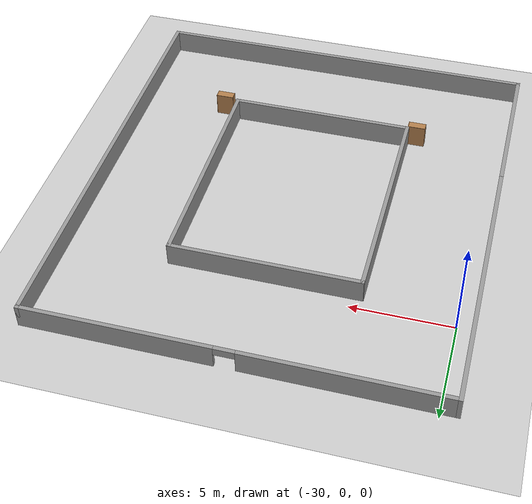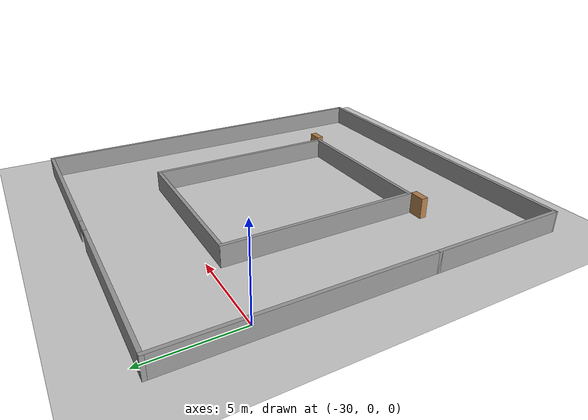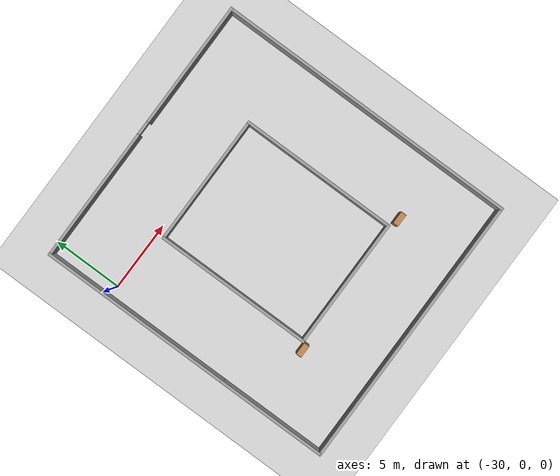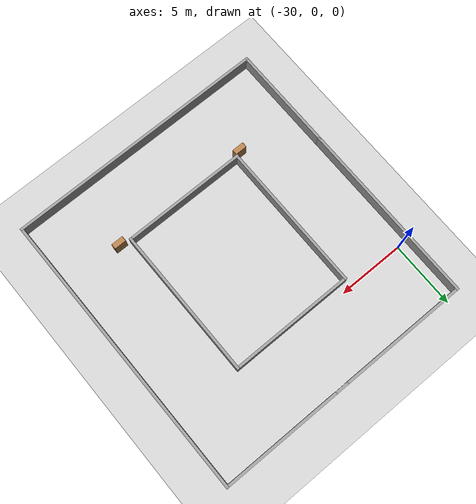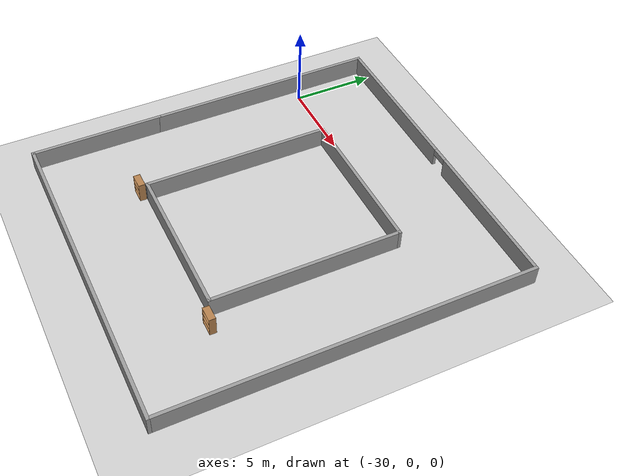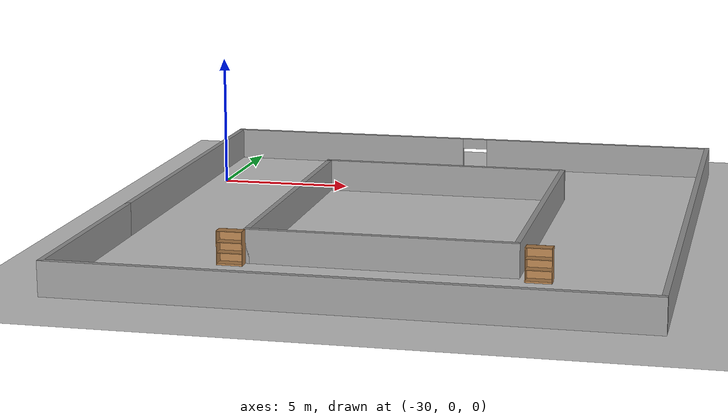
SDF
<sdf version="1.4">
 <world name="default">
  <light name="sun" type="directional">
   <pose>0 0 10 0 -0 0</pose>
   <diffuse>0.8 0.8 0.8 1</diffuse>
   <specular>0.2 0.2 0.2 1</specular>
   <attenuation>
    <range>1000</range>
    <constant>0.9</constant>
    <linear>0.01</linear>
    <quadratic>0.001</quadratic>
   </attenuation>
   <direction>-0.5 0.1 -0.9</direction>
  </light>
  <model name="ground_plane">
   <static>1</static>
   <link name="link">
    <collision name="collision">
     <geometry><plane><normal>0 0 1</normal><size>100 100</size></plane></geometry>
     <surface><friction><ode><mu>100</mu><mu2>50</mu2></ode></friction></surface>
    </collision>
    <visual name="visual">
     <cast_shadows>0</cast_shadows>
     <geometry><plane><normal>0 0 1</normal><size>100 100</size></plane></geometry>
     <material>
      <script><uri>file://media/materials/scripts/gazebo.material</uri><name>Gazebo/Grey</name></script>
     </material>
    </visual>
    <velocity_decay><linear>0</linear><angular>0</angular></velocity_decay>
   </link>
  </model>
  <physics type="ode">
   <max_step_size>0.001</max_step_size>
   <real_time_factor>1</real_time_factor>
   <real_time_update_rate>1000</real_time_update_rate>
   <gravity>0 0 -9.8</gravity>
  </physics>
  <scene><ambient>0.4 0.4 0.4 1</ambient><background>0.7 0.7 0.7 1</background><shadows>1</shadows></scene>
  <spherical_coordinates>
   <surface_model>EARTH_WGS84</surface_model>
   <latitude_deg>0</latitude_deg>
   <longitude_deg>0</longitude_deg>
   <elevation>0</elevation>
   <heading_deg>0</heading_deg>
  </spherical_coordinates>
  <model name="Gworld">
   <link name="Wall_10">
    <collision name="Wall_10_Collision">
     <geometry><box><size>8.01684 0.2 1.2</size></box></geometry>
     <pose>0 0 0.6 0 -0 0</pose>
    </collision>
    <visual name="Wall_10_Visual">
     <pose>0 0 0.6 0 -0 0</pose>
     <geometry><box><size>8.01684 0.2 1.2</size></box></geometry>
     <material>
      <script><uri>file://media/materials/scripts/gazebo.material</uri><name>Gazebo/Grey</name></script>
     </material>
    </visual>
    <velocity_decay><linear>0</linear><angular>0</angular></velocity_decay>
    <pose>-30.7722 -13.1253 0 0 -0 1.5708</pose>
   </link>
   <link name="Wall_11">
    <collision name="Wall_11_Collision">
     <geometry><box><size>14.0961 0.2 1.2</size></box></geometry>
     <pose>0 0 0.6 0 -0 0</pose>
    </collision>
    <visual name="Wall_11_Visual">
     <pose>0 0 0.6 0 -0 0</pose>
     <geometry><box><size>14.0961 0.2 1.2</size></box></geometry>
     <material>
      <script><uri>file://media/materials/scripts/gazebo.material</uri><name>Gazebo/Grey</name></script>
     </material>
    </visual>
    <velocity_decay><linear>0</linear><angular>0</angular></velocity_decay>
    <pose>-30.7721 -2.26894 0 0 -0 1.57078</pose>
   </link>
   <link name="Wall_12">
    <pose>-20.872 4.679 0 0 -0 0</pose>
    <visual name="Wall_12_Visual_0">
     <pose>-5.10538 0 0.6 0 -0 0</pose>
     <geometry><box><size>9.78923 0.2 1.2</size></box></geometry>
     <material>
      <script><uri>file://media/materials/scripts/gazebo.material</uri><name>Gazebo/Grey</name></script>
     </material>
    </visual>
    <collision name="Wall_12_Collision_0">
     <geometry><box><size>9.78923 0.2 1.2</size></box></geometry>
     <pose>-5.10538 0 0.6 0 -0 0</pose>
    </collision>
    <visual name="Wall_12_Visual_1">
     <pose>5.39462 0 0.6 0 -0 0</pose>
     <geometry><box><size>9.21077 0.2 1.2</size></box></geometry>
     <material>
      <script><uri>file://media/materials/scripts/gazebo.material</uri><name>Gazebo/Grey</name></script>
     </material>
    </visual>
    <collision name="Wall_12_Collision_1">
     <geometry><box><size>9.21077 0.2 1.2</size></box></geometry>
     <pose>5.39462 0 0.6 0 -0 0</pose>
    </collision>
    <visual name="Wall_12_Visual_2">
     <pose>0.289232 0 1 0 -0 0</pose>
     <geometry><box><size>1 0.2 0.4</size></box></geometry>
     <material>
      <script><uri>file://media/materials/scripts/gazebo.material</uri><name>Gazebo/Grey</name></script>
     </material>
    </visual>
    <collision name="Wall_12_Collision_2">
     <geometry><box><size>1 0.2 0.4</size></box></geometry>
     <pose>0.289232 0 1 0 -0 0</pose>
    </collision>
    <velocity_decay><linear>0</linear><angular>0</angular></velocity_decay>
   </link>
   <link name="Wall_13">
    <collision name="Wall_13_Collision">
     <geometry><box><size>22 0.2 1.2</size></box></geometry>
     <pose>0 0 0.6 0 -0 0</pose>
    </collision>
    <visual name="Wall_13_Visual">
     <pose>0 0 0.6 0 -0 0</pose>
     <geometry><box><size>22 0.2 1.2</size></box></geometry>
     <material>
      <script><uri>file://media/materials/scripts/gazebo.material</uri><name>Gazebo/Grey</name></script>
     </material>
    </visual>
    <velocity_decay><linear>0</linear><angular>0</angular></velocity_decay>
    <pose>-10.972 -6.221 0 0 0 -1.5708</pose>
   </link>
   <link name="Wall_14">
    <collision name="Wall_14_Collision">
     <geometry><box><size>20 0.2 1.2</size></box></geometry>
     <pose>0 0 0.6 0 -0 0</pose>
    </collision>
    <visual name="Wall_14_Visual">
     <pose>0 0 0.6 0 -0 0</pose>
     <geometry><box><size>20 0.2 1.2</size></box></geometry>
     <material>
      <script><uri>file://media/materials/scripts/gazebo.material</uri><name>Gazebo/Grey</name></script>
     </material>
    </visual>
    <velocity_decay><linear>0</linear><angular>0</angular></velocity_decay>
    <pose>-20.872 -17.121 0 0 -0 3.14159</pose>
   </link>
   <link name="Wall_17">
    <collision name="Wall_17_Collision">
     <geometry><box><size>11.46 0.2 1.2</size></box></geometry>
     <pose>0 0 0.6 0 -0 0</pose>
    </collision>
    <visual name="Wall_17_Visual">
     <pose>0 0 0.6 0 -0 0</pose>
     <geometry><box><size>11.46 0.2 1.2</size></box></geometry>
     <material>
      <script><uri>file://media/materials/scripts/gazebo.material</uri><name>Gazebo/Grey</name></script>
     </material>
    </visual>
    <velocity_decay><linear>0</linear><angular>0</angular></velocity_decay>
    <pose>-25.522 -6.241 0 0 0 -1.5708</pose>
   </link>
   <link name="Wall_18">
    <collision name="Wall_18_Collision">
     <geometry><box><size>9.5 0.2 1.2</size></box></geometry>
     <pose>0 0 0.6 0 -0 0</pose>
    </collision>
    <visual name="Wall_18_Visual">
     <pose>0 0 0.6 0 -0 0</pose>
     <geometry><box><size>9.5 0.2 1.2</size></box></geometry>
     <material>
      <script><uri>file://media/materials/scripts/gazebo.material</uri><name>Gazebo/Grey</name></script>
     </material>
    </visual>
    <velocity_decay><linear>0</linear><angular>0</angular></velocity_decay>
    <pose>-20.872 -11.871 0 0 -0 0</pose>
   </link>
   <link name="Wall_19">
    <collision name="Wall_19_Collision">
     <geometry><box><size>11.4596 0.2 1.2</size></box></geometry>
     <pose>0 0 0.6 0 -0 0</pose>
    </collision>
    <visual name="Wall_19_Visual">
     <pose>0 0 0.6 0 -0 0</pose>
     <geometry><box><size>11.4596 0.2 1.2</size></box></geometry>
     <material>
      <script><uri>file://media/materials/scripts/gazebo.material</uri><name>Gazebo/Grey</name></script>
     </material>
    </visual>
    <velocity_decay><linear>0</linear><angular>0</angular></velocity_decay>
    <pose>-16.222 -6.241 0 0 -0 1.5708</pose>
   </link>
   <link name="Wall_20">
    <collision name="Wall_20_Collision">
     <geometry><box><size>9.478 0.2 1.2</size></box></geometry>
     <pose>0 0 0.6 0 -0 0</pose>
    </collision>
    <visual name="Wall_20_Visual">
     <pose>0 0 0.6 0 -0 0</pose>
     <geometry><box><size>9.478 0.2 1.2</size></box></geometry>
     <material>
      <script><uri>file://media/materials/scripts/gazebo.material</uri><name>Gazebo/Grey</name></script>
     </material>
    </visual>
    <velocity_decay><linear>0</linear><angular>0</angular></velocity_decay>
    <pose>-20.861 -0.611 0 0 -0 3.14159</pose>
   </link>
   <static>1</static>
  </model>
  <model name="bookshelf">
   <static>1</static>
   <link name="link">
    <inertial><mass>1</mass></inertial>
    <collision name="back">
     <pose>0 0.005 0.6 0 -0 0</pose>
     <geometry><box><size>0.9 0.01 1.2</size></box></geometry>
    </collision>
    <visual name="visual1">
     <pose>0 0.005 0.6 0 -0 0</pose>
     <geometry><box><size>0.9 0.01 1.2</size></box></geometry>
     <material>
      <script><uri>file://media/materials/scripts/gazebo.material</uri><name>Gazebo/Wood</name></script>
     </material>
    </visual>
    <collision name="left_side">
     <pose>0.45 -0.195 0.6 0 -0 0</pose>
     <geometry><box><size>0.02 0.4 1.2</size></box></geometry>
    </collision>
    <visual name="visual2">
     <pose>0.45 -0.195 0.6 0 -0 0</pose>
     <geometry><box><size>0.02 0.4 1.2</size></box></geometry>
     <material>
      <script><uri>file://media/materials/scripts/gazebo.material</uri><name>Gazebo/Wood</name></script>
     </material>
    </visual>
    <collision name="right_side">
     <pose>-0.45 -0.195 0.6 0 -0 0</pose>
     <geometry><box><size>0.02 0.4 1.2</size></box></geometry>
    </collision>
    <visual name="visual3">
     <pose>-0.45 -0.195 0.6 0 -0 0</pose>
     <geometry><box><size>0.02 0.4 1.2</size></box></geometry>
     <material>
      <script><uri>file://media/materials/scripts/gazebo.material</uri><name>Gazebo/Wood</name></script>
     </material>
    </visual>
    <collision name="bottom">
     <pose>0 -0.195 0.03 0 -0 0</pose>
     <geometry><box><size>0.88 0.4 0.06</size></box></geometry>
    </collision>
    <visual name="visual4">
     <pose>0 -0.195 0.03 0 -0 0</pose>
     <geometry><box><size>0.88 0.4 0.06</size></box></geometry>
     <material>
      <script><uri>file://media/materials/scripts/gazebo.material</uri><name>Gazebo/Wood</name></script>
     </material>
    </visual>
    <collision name="top">
     <pose>0 -0.195 1.19 0 -0 0</pose>
     <geometry><box><size>0.88 0.4 0.02</size></box></geometry>
    </collision>
    <visual name="visual5">
     <pose>0 -0.195 1.19 0 -0 0</pose>
     <geometry><box><size>0.88 0.4 0.02</size></box></geometry>
     <material>
      <script><uri>file://media/materials/scripts/gazebo.material</uri><name>Gazebo/Wood</name></script>
     </material>
    </visual>
    <collision name="low_shelf">
     <pose>0 -0.195 0.43 0 -0 0</pose>
     <geometry><box><size>0.88 0.4 0.02</size></box></geometry>
    </collision>
    <visual name="visual6">
     <pose>0 -0.195 0.43 0 -0 0</pose>
     <geometry><box><size>0.88 0.4 0.02</size></box></geometry>
     <material>
      <script><uri>file://media/materials/scripts/gazebo.material</uri><name>Gazebo/Wood</name></script>
     </material>
    </visual>
    <collision name="high_shelf">
     <pose>0 -0.195 0.8 0 -0 0</pose>
     <geometry><box><size>0.88 0.4 0.02</size></box></geometry>
    </collision>
    <visual name="visual7">
     <pose>0 -0.195 0.8 0 -0 0</pose>
     <geometry><box><size>0.88 0.4 0.02</size></box></geometry>
     <material>
      <script><uri>file://media/materials/scripts/gazebo.material</uri><name>Gazebo/Wood</name></script>
     </material>
    </visual>
    <velocity_decay><linear>0</linear><angular>0</angular></velocity_decay>
   </link>
   <pose>-15.4368 -12 0 0 -0 0</pose>
  </model>
  <model name="bookshelf_0">
   <static>1</static>
   <link name="link">
    <inertial><mass>1</mass></inertial>
    <collision name="back">
     <pose>0 0.005 0.6 0 -0 0</pose>
     <geometry><box><size>0.9 0.01 1.2</size></box></geometry>
    </collision>
    <visual name="visual1">
     <pose>0 0.005 0.6 0 -0 0</pose>
     <geometry><box><size>0.9 0.01 1.2</size></box></geometry>
     <material>
      <script><uri>file://media/materials/scripts/gazebo.material</uri><name>Gazebo/Wood</name></script>
     </material>
    </visual>
    <collision name="left_side">
     <pose>0.45 -0.195 0.6 0 -0 0</pose>
     <geometry><box><size>0.02 0.4 1.2</size></box></geometry>
    </collision>
    <visual name="visual2">
     <pose>0.45 -0.195 0.6 0 -0 0</pose>
     <geometry><box><size>0.02 0.4 1.2</size></box></geometry>
     <material>
      <script><uri>file://media/materials/scripts/gazebo.material</uri><name>Gazebo/Wood</name></script>
     </material>
    </visual>
    <collision name="right_side">
     <pose>-0.45 -0.195 0.6 0 -0 0</pose>
     <geometry><box><size>0.02 0.4 1.2</size></box></geometry>
    </collision>
    <visual name="visual3">
     <pose>-0.45 -0.195 0.6 0 -0 0</pose>
     <geometry><box><size>0.02 0.4 1.2</size></box></geometry>
     <material>
      <script><uri>file://media/materials/scripts/gazebo.material</uri><name>Gazebo/Wood</name></script>
     </material>
    </visual>
    <collision name="bottom">
     <pose>0 -0.195 0.03 0 -0 0</pose>
     <geometry><box><size>0.88 0.4 0.06</size></box></geometry>
    </collision>
    <visual name="visual4">
     <pose>0 -0.195 0.03 0 -0 0</pose>
     <geometry><box><size>0.88 0.4 0.06</size></box></geometry>
     <material>
      <script><uri>file://media/materials/scripts/gazebo.material</uri><name>Gazebo/Wood</name></script>
     </material>
    </visual>
    <collision name="top">
     <pose>0 -0.195 1.19 0 -0 0</pose>
     <geometry><box><size>0.88 0.4 0.02</size></box></geometry>
    </collision>
    <visual name="visual5">
     <pose>0 -0.195 1.19 0 -0 0</pose>
     <geometry><box><size>0.88 0.4 0.02</size></box></geometry>
     <material>
      <script><uri>file://media/materials/scripts/gazebo.material</uri><name>Gazebo/Wood</name></script>
     </material>
    </visual>
    <collision name="low_shelf">
     <pose>0 -0.195 0.43 0 -0 0</pose>
     <geometry><box><size>0.88 0.4 0.02</size></box></geometry>
    </collision>
    <visual name="visual6">
     <pose>0 -0.195 0.43 0 -0 0</pose>
     <geometry><box><size>0.88 0.4 0.02</size></box></geometry>
     <material>
      <script><uri>file://media/materials/scripts/gazebo.material</uri><name>Gazebo/Wood</name></script>
     </material>
    </visual>
    <collision name="high_shelf">
     <pose>0 -0.195 0.8 0 -0 0</pose>
     <geometry><box><size>0.88 0.4 0.02</size></box></geometry>
    </collision>
    <visual name="visual7">
     <pose>0 -0.195 0.8 0 -0 0</pose>
     <geometry><box><size>0.88 0.4 0.02</size></box></geometry>
     <material>
      <script><uri>file://media/materials/scripts/gazebo.material</uri><name>Gazebo/Wood</name></script>
     </material>
    </visual>
    <velocity_decay><linear>0</linear><angular>0</angular></velocity_decay>
   </link>
   <pose>-26 -12 0 0 -0 0</pose>
  </model>
 </world>
</sdf>
